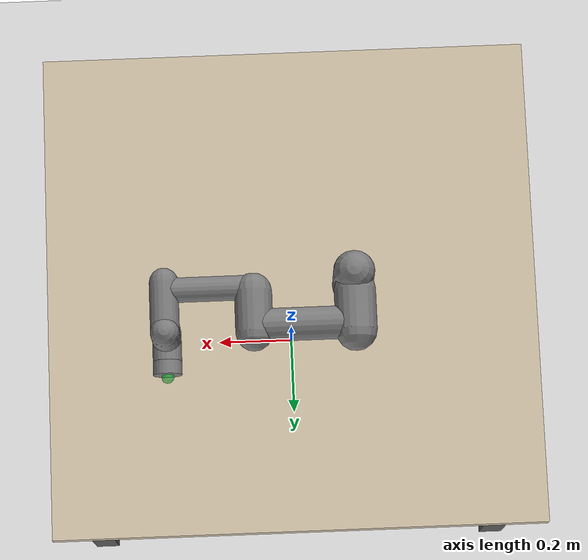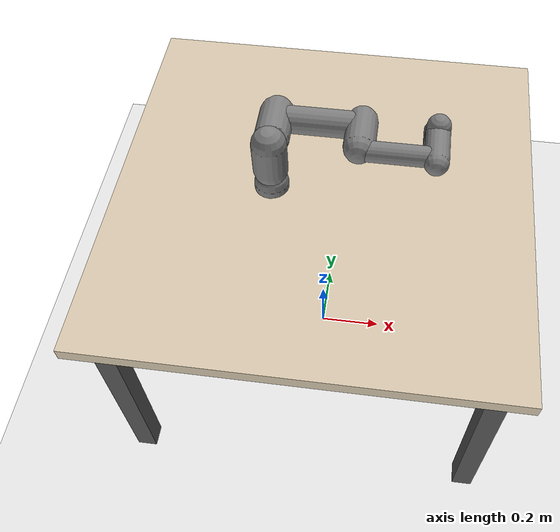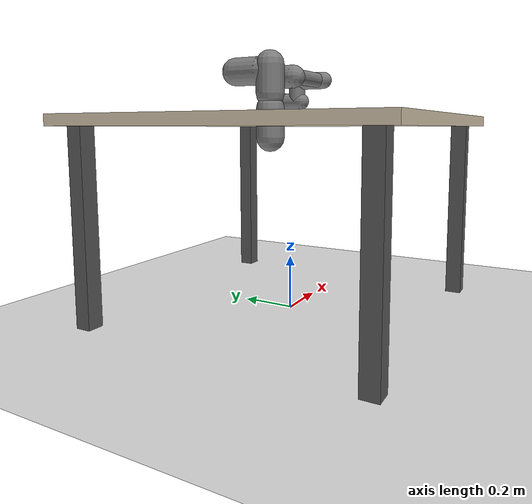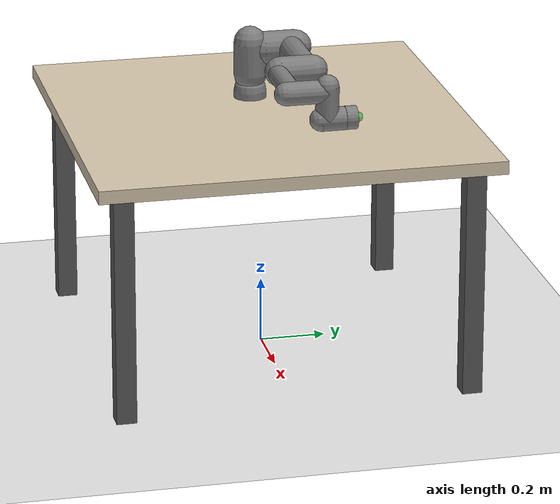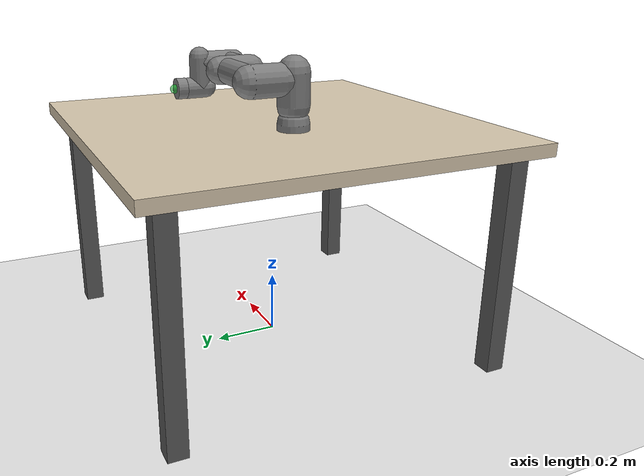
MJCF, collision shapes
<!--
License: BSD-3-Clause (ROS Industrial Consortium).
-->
<mujoco model="ur3e">
  <compiler angle="radian" meshdir="assets/ur3e" autolimits="true"/>
  <option timestep="0.002" gravity="0 0 -9.81" integrator="implicitfast"/>

  <visual>
    <quality shadowsize="4096"/>
    <map fogstart="8" fogend="12"/>
  </visual>

  <default>
    <default class="ur3e">
      <material specular="0.5" shininess="0.25"/>
      <joint axis="0 1 0" range="-6.28319 6.28319" armature="0.1"/>
      <general gaintype="fixed" biastype="affine"
               ctrlrange="-6.2831 6.2831"
               gainprm="1000" biasprm="0 -1000 -200"
               forcerange="-56 56"/>

      <default class="size3">
        <default class="size3_limited">
          <joint range="-3.1415 3.1415"/>
            <general gainprm="500" biasprm="0 -500 -100" ctrlrange="-3.14159 3.14159" forcerange="-28 28"/>
        </default>
      </default>
      <default class="size1">
        <general gainprm="200" biasprm="0 -200 -40"
                 forcerange="-12 12"/>
      </default>

      <default class="visual">
        <geom type="mesh" contype="0" conaffinity="0" group="2"/>
      </default>
      <default class="collision">
        <geom type="capsule" group="3" contype="1" conaffinity="1"/>
        <default class="eef_collision">
          <geom type="cylinder"/>
        </default>
      </default>

      <site size="0.001" rgba="0.5 0.5 0.5 0.3" group="4"/>
    </default>
  </default>

  <asset>
    <texture name="grid" type="2d" builtin="checker" width="256" height="256"
             rgb1="0.9 0.9 0.9" rgb2="0.8 0.8 0.8"/>
    <material name="tablemat" texture="grid" texrepeat="3 3" reflectance="0.05"/>

    <!-- UR colour palette (from Menagerie) -->
    <material class="ur3e" name="black"     rgba="0.033 0.033 0.033 1"/>
    <material class="ur3e" name="jointgray" rgba="0.278 0.278 0.278 1"/>
    <material class="ur3e" name="linkgray"  rgba="0.82  0.82  0.82  1"/>
    <material class="ur3e" name="urblue"    rgba="0.49  0.678 0.8   1"/>

    <!-- Native UR3e visual meshes (OBJ from ROS-Industrial DAE,
         converted with mm→m scale + Y-up→Z-up axis transform) -->
    <mesh file="base_0.obj"/>
    <mesh file="base_1.obj"/>
    <mesh file="shoulder_0.obj"/>
    <mesh file="shoulder_1.obj"/>
    <mesh file="shoulder_2.obj"/>
    <mesh file="upperarm_0.obj"/>
    <mesh file="upperarm_1.obj"/>
    <mesh file="upperarm_2.obj"/>
    <mesh file="upperarm_3.obj"/>
    <mesh file="forearm_0.obj"/>
    <mesh file="forearm_1.obj"/>
    <mesh file="forearm_2.obj"/>
    <mesh file="forearm_3.obj"/>
    <mesh file="wrist1_0.obj"/>
    <mesh file="wrist1_1.obj"/>
    <mesh file="wrist1_2.obj"/>
    <mesh file="wrist2_0.obj"/>
    <mesh file="wrist2_1.obj"/>
    <mesh file="wrist2_2.obj"/>
    <mesh file="wrist3.obj"/>
  </asset>

  <worldbody>
    <light pos="2 2 4" dir="-1 -1 -2"/>
    <geom name="table" type="box" pos="0 0 0.72" size="0.6 0.6 0.02"
          material="tablemat" rgba="0.84 0.78 0.68 1"/>
    <!-- Legs to make the table visually closer to Isaac Lab's table prop. -->
    <geom name="table_leg_fl" type="box" pos="0.52 0.52 0.36" size="0.03 0.03 0.36"
          rgba="0.35 0.35 0.35 1" friction="1 0.1 0.1"/>
    <geom name="table_leg_fr" type="box" pos="0.52 -0.52 0.36" size="0.03 0.03 0.36"
          rgba="0.35 0.35 0.35 1" friction="1 0.1 0.1"/>
    <geom name="table_leg_rl" type="box" pos="-0.52 0.52 0.36" size="0.03 0.03 0.36"
          rgba="0.35 0.35 0.35 1" friction="1 0.1 0.1"/>
    <geom name="table_leg_rr" type="box" pos="-0.52 -0.52 0.36" size="0.03 0.03 0.36"
          rgba="0.35 0.35 0.35 1" friction="1 0.1 0.1"/>
    <geom name="floor" type="plane" pos="0 0 0" size="4 4 0.1"
          rgba="0.9 0.9 0.9 1" friction="1 0.1 0.1"/>
    <camera name="top" pos="0.1 -0.2 2.0" xyaxes="1 0 0 0 1 0" mode="fixed"/>

    <!-- ================= UR3e Robot ================= -->
    <!-- d1 = 0.15185 (vs UR5e 0.163) -->
    <body name="base" pos="-0.15 0 0.74" quat="1 0 0 0" childclass="ur3e">
      <inertial mass="2.0" pos="0 0 0" diaginertia="0.0022 0.0022 0.0036"/>
      <geom mesh="base_0" material="black" class="visual" name="base_viz_0"/>
      <geom mesh="base_1" material="jointgray" class="visual" name="base_viz_1"/>
      <geom name="base_col" class="collision" size="0.05 0.05" pos="0 0 -0.03"/>

      <!-- shoulder: d1 = 0.15185 -->
      <body name="shoulder" pos="0 0 0.15185">
        <inertial mass="2.0" pos="0 0 0" diaginertia="0.0055 0.0055 0.0036"/>
        <joint name="shoulder_pan" class="size3" axis="0 0 1"/>
        <geom mesh="shoulder_0" material="urblue" class="visual" name="link1_viz_0"/>
        <geom mesh="shoulder_1" material="black" class="visual" name="link1_viz_1"/>
        <geom mesh="shoulder_2" material="jointgray" class="visual" name="link1_viz_2"/>
        <geom name="shoulder_col" class="collision" size="0.05 0.05" pos="0 0 -0.03"/>

        <!-- upper_arm: offset y scaled, a2 = 0.24355 -->
        <body name="upper_arm" pos="0 0.120 0" quat="1 0 1 0">
          <inertial mass="3.42" pos="0 0 0.122"
                    diaginertia="0.022 0.022 0.005"/>
          <joint name="shoulder_lift" class="size3"/>
          <geom mesh="upperarm_0" material="linkgray" class="visual" name="link2_viz_0"/>
          <geom mesh="upperarm_1" material="black" class="visual" name="link2_viz_1"/>
          <geom mesh="upperarm_2" material="jointgray" class="visual" name="link2_viz_2"/>
          <geom mesh="upperarm_3" material="urblue" class="visual" name="link2_viz_3"/>
          <geom name="upper_arm_col_0" class="collision" pos="0 -0.03 0" quat="1 1 0 0" size="0.05 0.05"/>
          <geom name="upper_arm_col_1" class="collision" size="0.04 0.115" pos="0 0 0.115"/>

          <!-- forearm: offset y scaled, a3 = 0.2132 at z = 0.24355 -->
          <body name="forearm" pos="0 -0.093 0.24355">
            <inertial mass="1.26" pos="0 0 0.107"
                      diaginertia="0.006 0.006 0.001"/>
            <joint name="elbow" class="size3_limited"/>
            <geom mesh="forearm_0" material="urblue" class="visual" name="link3_viz_0"/>
            <geom mesh="forearm_1" material="linkgray" class="visual" name="link3_viz_1"/>
            <geom mesh="forearm_2" material="black" class="visual" name="link3_viz_2"/>
            <geom mesh="forearm_3" material="jointgray" class="visual" name="link3_viz_3"/>
            <geom name="forearm_col_0" class="collision" pos="0 0.06 0" quat="1 1 0 0" size="0.045 0.05"/>
            <geom name="forearm_col_1" class="collision" size="0.03 0.10" pos="0 0 0.107"/>

            <!-- wrist1: d4 = 0.13105 at z = 0.2132 -->
            <body name="wrist1" pos="0 0 0.2132" quat="1 0 1 0">
              <inertial mass="0.8" pos="0 0.104 0"
                        diaginertia="0.0013 0.0013 0.001"/>
              <joint name="wrist1" class="size1"/>
              <geom mesh="wrist1_0" material="black" class="visual" name="link4_viz_0"/>
              <geom mesh="wrist1_1" material="urblue" class="visual" name="link4_viz_1"/>
              <geom mesh="wrist1_2" material="jointgray" class="visual" name="link4_viz_2"/>
              <geom name="wrist1_col" class="collision" pos="0 0.04 0" quat="1 1 0 0" size="0.035 0.06"/>

              <!-- wrist2: d4-elbow_offset = 0.13105-0.027 = 0.10405 -->
              <body name="wrist2" pos="0 0.10405 0">
                <inertial mass="0.8" pos="0 0 0.086"
                          diaginertia="0.0013 0.0013 0.001"/>
                <joint name="wrist2" axis="0 0 1" class="size1"/>
                <geom mesh="wrist2_0" material="black" class="visual" name="link5_viz_0"/>
                <geom mesh="wrist2_1" material="urblue" class="visual" name="link5_viz_1"/>
                <geom mesh="wrist2_2" material="jointgray" class="visual" name="link5_viz_2"/>
                <geom name="wrist2_col_0" class="collision" size="0.035 0.05" pos="0 0 0.035"/>
                <geom name="wrist2_col_1" class="collision" pos="0 0.017 0.086" quat="1 1 0 0" size="0.035 0.035"/>

                <!-- wrist3: d6 = 0.0921 at z = 0.08535 -->
                <body name="wrist3" pos="0 0 0.08535">
                  <inertial mass="0.1889" pos="0 0.066 0" quat="1 0 0 1"
                            diaginertia="0.000132 9.91e-05 9.91e-05"/>
                  <joint name="wrist3" class="size1"/>
                  <geom material="linkgray" mesh="wrist3" class="visual" name="link6_viz"/>
                  <geom name="wrist3_col" class="eef_collision" pos="0 0.07 0" quat="1 1 0 0" size="0.035 0.017"/>

                  <!-- End-effector camera (moves with the tool flange) -->
                  <camera name="ee_cam" pos="0 0.12 0" xyaxes="1 0 0 0 0 1"
                          fovy="60" mode="fixed"/>

                  <!-- End-effector site and sphere (project convention) -->
                  <site name="ee_site" pos="0 0.0921 0" quat="-1 1 0 0" size="0.01"
                        rgba="0.1 0.8 0.2 1"/>
                  <geom name="ee_sphere" type="sphere" pos="0 0.0921 0"
                        size="0.015" rgba="0.1 0.8 0.2 0.6"
                        contype="0" conaffinity="0"/>
                </body>
              </body>
            </body>
          </body>
        </body>
      </body>
    </body>
  </worldbody>

  <actuator>
    <general class="size3" name="shoulder_pan_motor" joint="shoulder_pan"/>
    <general class="size3" name="shoulder_lift_motor" joint="shoulder_lift"/>
    <general class="size3_limited" name="elbow_motor" joint="elbow"/>
    <general class="size1" name="wrist1_motor" joint="wrist1"/>
    <general class="size1" name="wrist2_motor" joint="wrist2"/>
    <general class="size1" name="wrist3_motor" joint="wrist3"/>
  </actuator>

  <keyframe>
    <key name="home"
         qpos="-0.4147 -1.5708 1.5708 -1.5708 -1.5708 0"
         ctrl="-0.4147 -1.5708 1.5708 -1.5708 -1.5708 0"/>
  </keyframe>
</mujoco>
